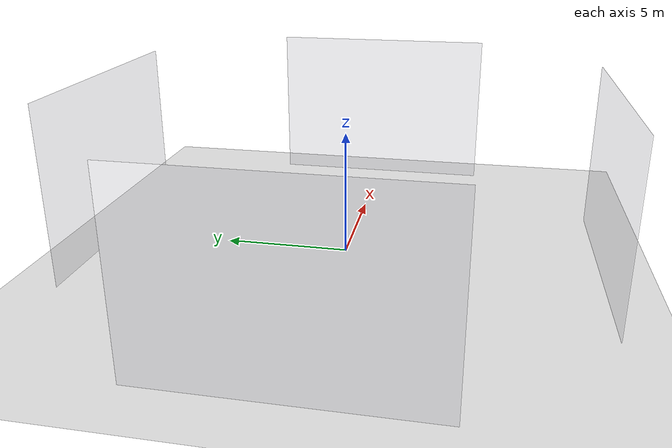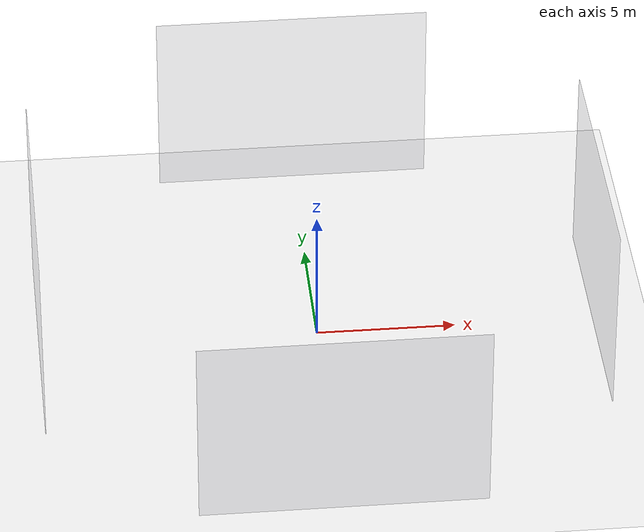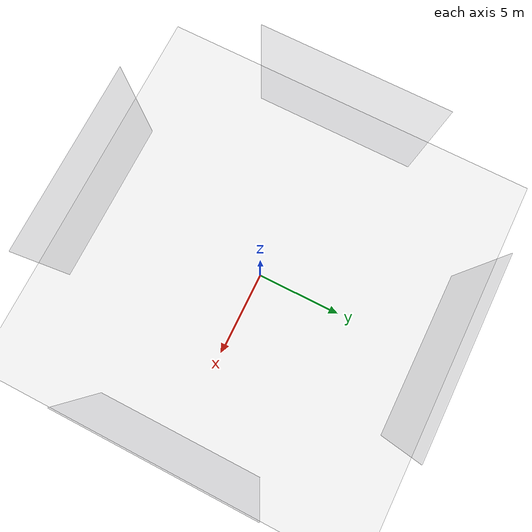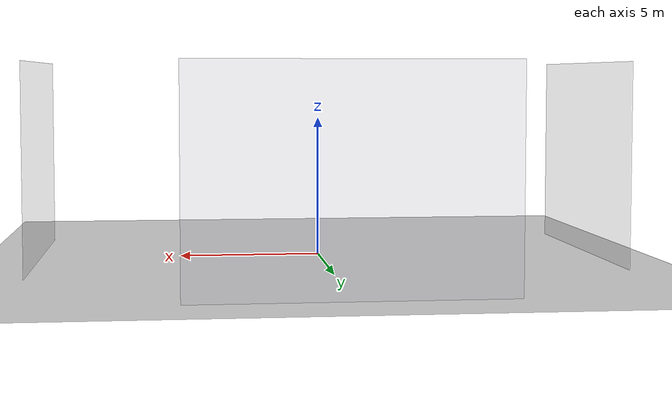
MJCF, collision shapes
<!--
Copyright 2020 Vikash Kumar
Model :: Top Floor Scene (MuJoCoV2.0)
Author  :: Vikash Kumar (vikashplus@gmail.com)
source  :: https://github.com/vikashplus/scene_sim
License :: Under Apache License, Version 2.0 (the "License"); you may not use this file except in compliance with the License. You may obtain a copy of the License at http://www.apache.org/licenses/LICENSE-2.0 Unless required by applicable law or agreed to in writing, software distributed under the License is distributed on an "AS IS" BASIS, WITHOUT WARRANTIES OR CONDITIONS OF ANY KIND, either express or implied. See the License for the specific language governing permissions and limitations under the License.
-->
<mujoco model="topflor scene">

  <asset>
    <texture name="skybox" type="skybox" builtin="gradient" rgb1="1 1 1" rgb2="1 1 1" width="800" height="800" mark="random" markrgb=".8 .8 .8"/>
    <texture name="texplane" type="2d" height="1" width="1" file="../../../simhive/scene_sim/textures/white_marble_tile2.png"/>
    <texture name="texwindow" type="2d" height="1" width="1" file="../../../simhive/scene_sim/textures/windows0.png"/>

    <material name="MatPlane" reflectance="0.01" texture="texplane" texrepeat="4 4" texuniform="true"/>
    <material name="MatMetal" reflectance="0" specular=".2" emission=".01" rgba=".31 .3 .3 1"/>
    <material name="MatGlass" reflectance="1" specular=".4" emission=".25" rgba=".6 .6 .65 .1"/>
    <material name="MatWindow" reflectance="0" texture="texwindow" texrepeat="1 1" texuniform="true" rgba="1 0 0 1"/>

    <mesh name="wall" file="../../../../simhive/scene_sim/meshes/highwindow.stl" scale="1 1 1"/>
    <mesh name="skyline" file="../../../../simhive/scene_sim/meshes/skyline.stl" scale="2.2 2.2 1"/>
    <mesh name="robohive" file="../../../../simhive/scene_sim/meshes/robohive_text.stl"/>
    <mesh name="robohive_half" file="../../../../simhive/scene_sim/meshes/robohive_logohalf.stl" scale="4 4 4"/>
  </asset>

  <compiler angle="radian"/>
  <statistic extent="3.5"/>

  <visual>
    <map fogstart="1.5" fogend="5" force="0.1" znear="0.01" shadowclip="2"/>
    <quality shadowsize="4096" offsamples="4"/>
  </visual>

  <default>
    <default class='scene'>
      <geom contype="0" conaffinity="0"/>
    </default>
  </default>

  <worldbody>
    <!-- indoor lights -->
    <light name="left_light" directional="false" diffuse=".4 .35 .3" specular="0.4 0.35 0.3" pos="-4 -4 7" dir="1 1 -1"/>
    <light name="right_light" directional="false" diffuse=".4 .35 .3" specular="0.4 0.35 0.3" pos="4 -4 7" dir="-1 1 -1"/>
    <light name="front_light" directional="false" diffuse=".4 .35 .3" specular="0.4 0.35 0.3" pos="0 4 7" dir="0 -1 -1"/>

    <!-- floor, roof and outside -->
    <geom class='scene' name="skyline" mesh="skyline" pos="0 0 -3" type="mesh" rgba=".3 .3 .27 1" euler="0 0 0" material="MatWindow"/>
    <geom class='scene' name="floor" pos="0 0 0.0001" size="12 12 .1" conaffinity="1" contype="1" type="plane" material="MatPlane" condim="3"/>
    <geom class='scene' name="roof" type="plane" pos="0 0 8" size="12 12 .2" material="MatMetal" euler="3.14 0 0" contype="0" conaffinity="0"/>
    <geom pos="0 -.45 0" name="robohive" type="mesh" mesh="robohive" conaffinity="0" contype="0" rgba=".3 .3 .3 1"/>
    <geom pos="0 0 -.030" type="mesh" mesh="robohive_half" conaffinity="0" contype="0" rgba="1 0.6 0 2" euler="0 0 0"/>
    <geom pos="0 0 -.03" type="mesh" mesh="robohive_half" conaffinity="0" contype="0" rgba=".3 .3 .3 1" euler="-.0 0 3.14"/>

    <!-- walls -->
    <geom class='scene' mesh="wall" pos="0 10 0" type="mesh" material="MatMetal"/>
    <geom class='scene' type="box" pos="0 10 3.5" size="5 .01 3.5" material="MatGlass"/>
    <geom class='scene' mesh="wall" pos="0 -10 0" type="mesh" material="MatMetal" euler="0 0 -3.14"/>
    <geom class='scene' type="box" pos="0 -10 3.5" size="5 .01 3.5" material="MatGlass"/>
    <geom class='scene' mesh="wall" pos="10 0 0" type="mesh" material="MatMetal" euler="0 0 -1.57"/>
    <geom class='scene' type="box" pos="10 0 3.5" size=".01 5 3.5" material="MatGlass"/>
    <geom class='scene' mesh="wall" pos="-10 0 0" type="mesh" material="MatMetal" euler="0 0 1.57"/>
    <geom class='scene' type="box" pos="-10 0 3.5" size=".01 5 3.5" material="MatGlass"/>

    <!-- co-ordinate axis -->
    <site name="xaxis" fromto="0 0 0 1 0 0" size=".005" type="capsule" rgba="1 0 0 .25" group="3"/>
    <site name="yaxis" fromto="0 0 0 0 1 0" size=".005" type="capsule" rgba="0 1 0 .25" group="3"/>
  </worldbody>

</mujoco>
